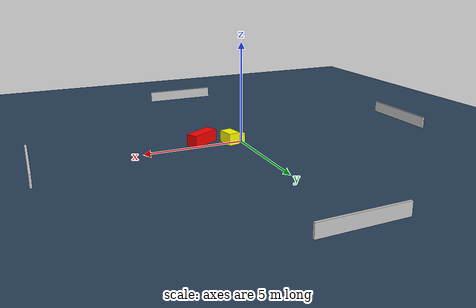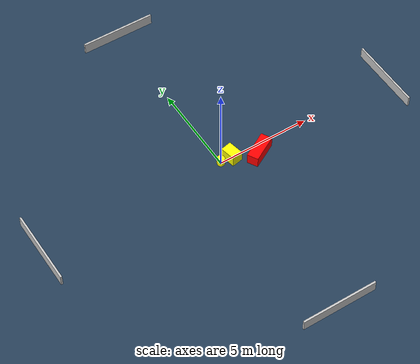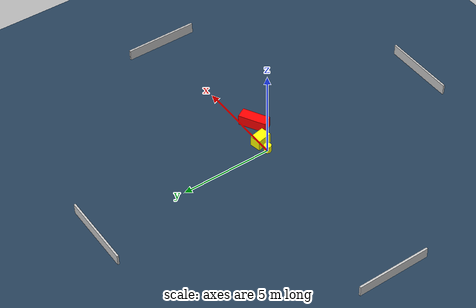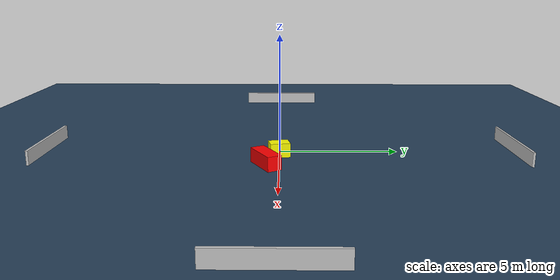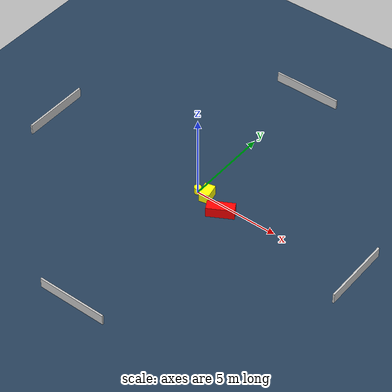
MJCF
<?xml version="1.0" ?>
<mujoco model="generated_environment">
  <option timestep="0.01" integrator="RK4" cone="elliptic"/>
  <default>
    <geom density="1"/>
  </default>
  <asset>
    <texture builtin="gradient" height="3072" name="skybox" rgb1="0.3 0.5 0.7" rgb2="0 0 0" type="skybox" width="512"/>
    <texture builtin="checker" height="300" name="groundplane" rgb1="0.2 0.3 0.4" rgb2="0.1 0.2 0.3" type="2d" width="300"/>
    <material name="groundplane" reflectance="0.2" texrepeat="5 5" texture="groundplane"/>
  </asset>
  <worldbody>
    <light dir="0 0 -1" directional="true" pos="0 0 1.5"/>
    <geom condim="3" friction="0.5 0.005 0.001" material="groundplane" name="floor" pos="0 0 0" size="0 0 0.05" type="plane"/>
    <body name="walls">
      <geom name="wall_1" condim="4" pos="-10.0 0.0 0.3" rgba="0.800000011920929 0.800000011920929 0.800000011920929 1.0" size="0.05 2.0 0.3" type="box"/>
      <geom name="wall_2" condim="4" pos="10.0 0.0 0.3" rgba="0.800000011920929 0.800000011920929 0.800000011920929 1.0" size="0.05 2.0 0.3" type="box"/>
      <geom name="wall_3" condim="4" pos="0.0 -10.0 0.3" rgba="0.800000011920929 0.800000011920929 0.800000011920929 1.0" size="2.0 0.05 0.3" type="box"/>
      <geom name="wall_4" condim="4" pos="0.0 10.0 0.3" rgba="0.800000011920929 0.800000011920929 0.800000011920929 1.0" size="2.0 0.05 0.3" type="box"/>
    </body>
    <body name="robot">
      <joint name="joint_x" type="slide" pos="0 0 0" axis="1 0 0"/>
      <joint name="joint_y" type="slide" pos="0 0 0" axis="0 1 0"/>
      <geom name="robot" type="cylinder" pos="0.0 0.0 0.2" size="0.2 0.2 0.0" mass="5.0" friction="1.0 0.005 0.0001" condim="4" rgba="1.0 1.0 0.0 1.0"/>
    </body>
    <body name="obstacle_1_movable">
      <geom name="obstacle_1_movable" condim="4" pos="0.621882156976024 -0.010373088004460594 0.3" euler="0 0 191.4176462011338" friction="0.0 0.005 0.001" rgba="1.0 1.0 0.0 1.0" size="0.29717151003100495 0.41921125844333307 0.3" type="box" mass="0.1"/>
      <joint type="free"/>
    </body>
    <body name="obstacle_2_static">
      <geom name="obstacle_2_static" condim="4" pos="1.9211866673560003 -0.5297568906457086 0.3" euler="0 0 119.18749076755851" friction="0.0 0.005 0.001" rgba="1.0 0.0 0.0 1.0" size="0.29840644162999097 0.7625067174531714 0.3" type="box"/>
    </body>
  </worldbody>
  <actuator>
    <motor name="actuator_x" joint="joint_x" gear="1" ctrlrange="-1 1"/>
    <motor name="actuator_y" joint="joint_y" gear="1" ctrlrange="-1 1"/>
  </actuator>
</mujoco>
